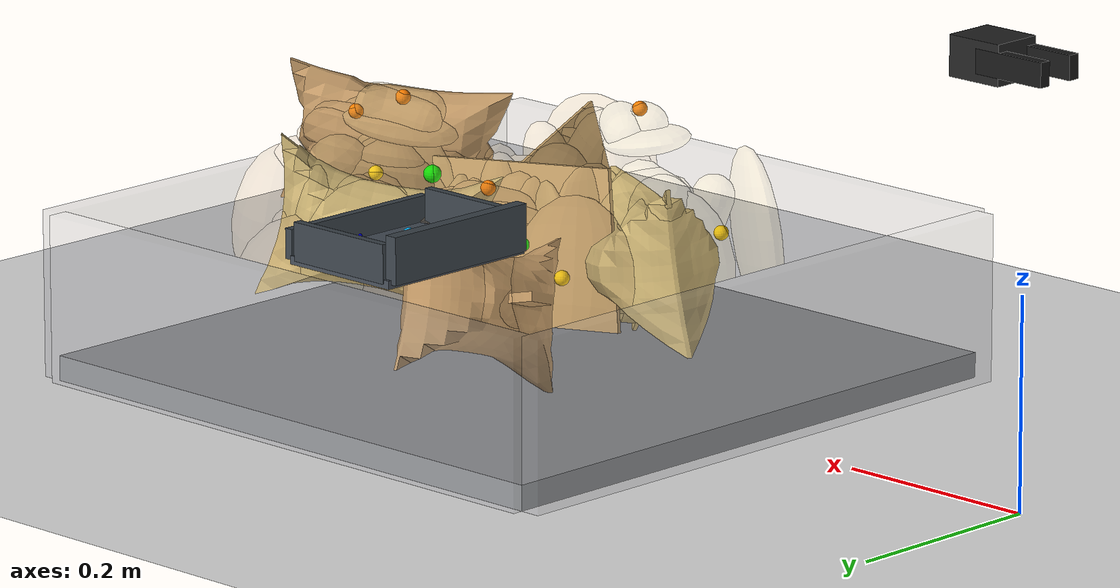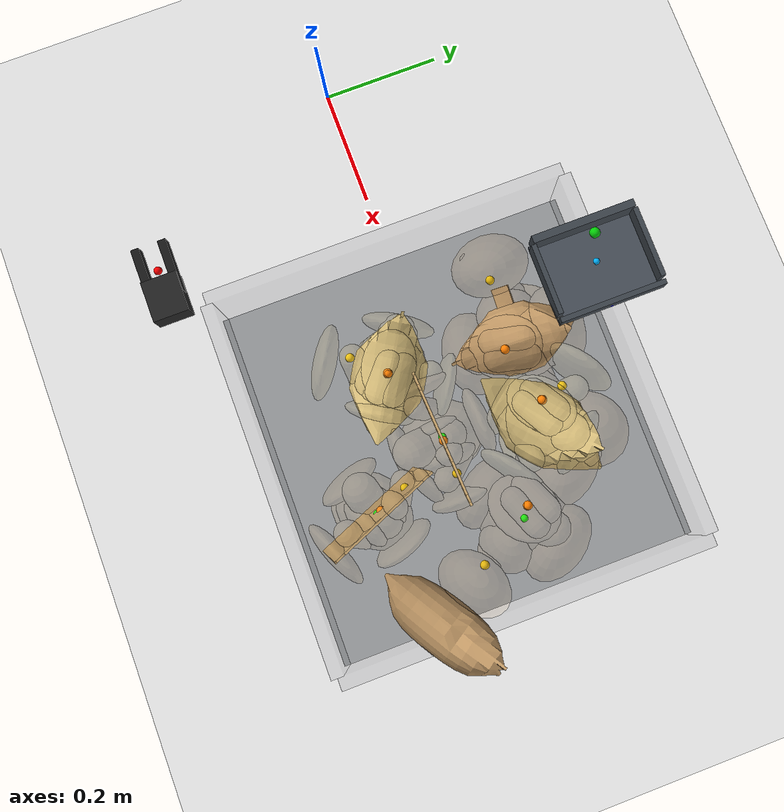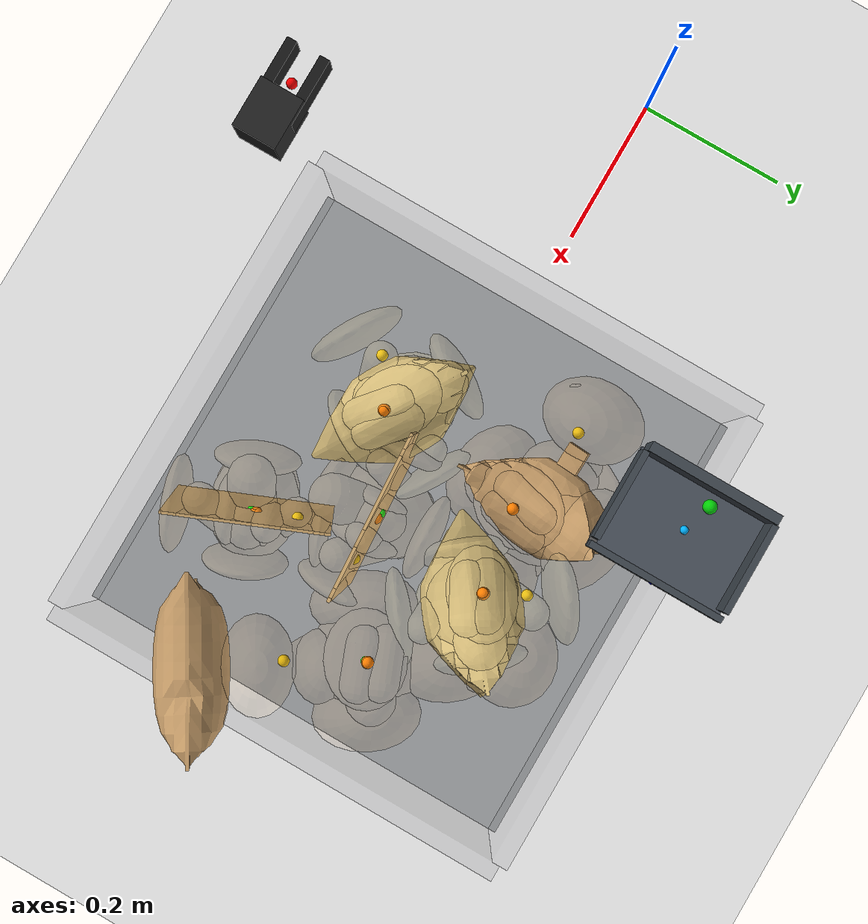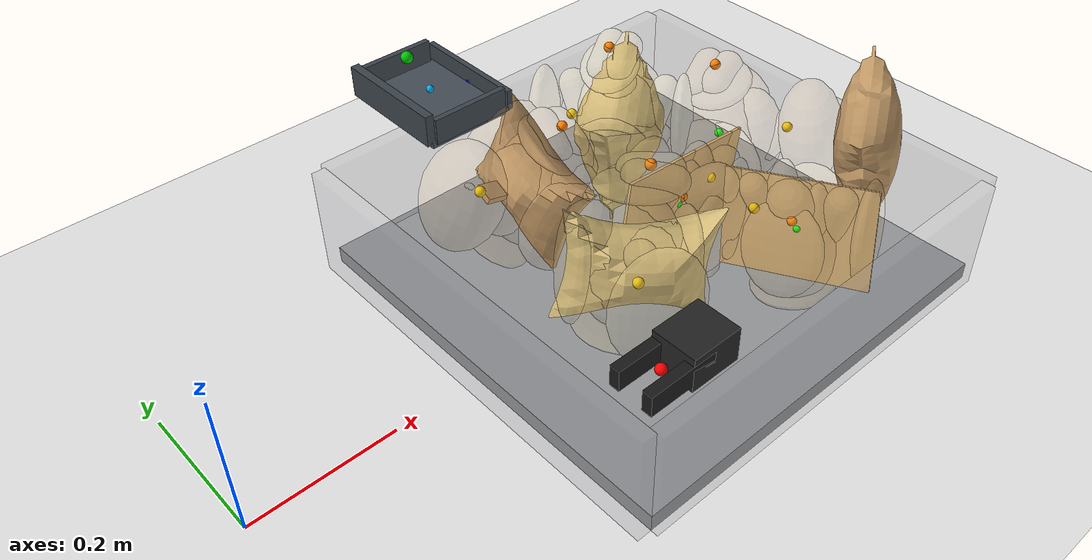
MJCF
<mujoco model="underfilled_slack_seed0">
  <compiler angle="radian" coordinate="local" inertiafromgeom="true" meshdir="D:/Michael/2025/01.Research/01.Parceldetection/16.Pybullet/bullet3-master (1)/bullet3-master/examples/pybullet/examples/DeformableTest/Sackcodex2/object"/>
  <option timestep="0.002" gravity="0 0 -9.81" integrator="implicitfast" iterations="100" tolerance="1e-8"/>
  <size memory="768M" nconmax="12000"/>

  <visual>
    <global azimuth="128" elevation="-20"/>
    <headlight ambient="0.34 0.34 0.34" diffuse="0.78 0.78 0.78" specular="0.15 0.15 0.15"/>
    <rgba haze="0.11 0.13 0.18 1"/>
  </visual>

  <default>
    <geom condim="4" friction="1.15 0.03 0.01" margin="0.003" solimp="0.93 0.98 0.003" solref="0.012 1"/>
    <joint damping="1.2" armature="0.002"/>
    <position kp="2500" forcelimited="true" forcerange="-420 420"/>
    <motor ctrllimited="true"/>
  </default>

  <asset>
    <mesh name="sack_0_visual_mesh" file="sack2.obj" scale="0.0745 0.0745 0.0768"/>
    <mesh name="sack_1_visual_mesh" file="sack8.obj" scale="0.0748 0.0748 0.0816"/>
    <mesh name="sack_2_visual_mesh" file="sack2.obj" scale="0.0675 0.0675 0.0682"/>
    <mesh name="sack_3_visual_mesh" file="sack3.obj" scale="0.0766 0.0766 0.0807"/>
    <mesh name="sack_4_visual_mesh" file="sack9.obj" scale="0.0708 0.0708 0.0755"/>
    <mesh name="sack_5_visual_mesh" file="sack7.obj" scale="0.0759 0.0759 0.0816"/>
  </asset>

  <worldbody>
    <light name="key" pos="0.85 0.15 1.8" dir="-0.2 -0.1 -1" directional="true"/>
    <geom name="floor" type="plane" size="2 2 0.1" rgba="0.93 0.93 0.93 1"/>
    <geom name="work_pad" type="box" pos="0.62 0 0.012" size="0.30 0.30 0.012" rgba="0.60 0.61 0.62 1" friction="1.4 0.05 0.01"/>
    <geom name="corral_front" type="box" pos="0.93 0.00 0.08" size="0.010 0.30 0.08" rgba="0.55 0.55 0.58 0.22" friction="1.0 0.03 0.01"/>
    <geom name="corral_back" type="box" pos="0.31 0.00 0.08" size="0.010 0.30 0.08" rgba="0.55 0.55 0.58 0.18" friction="1.0 0.03 0.01"/>
    <geom name="corral_left" type="box" pos="0.62 0.30 0.08" size="0.30 0.010 0.08" rgba="0.55 0.55 0.58 0.14" friction="1.0 0.03 0.01"/>
    <geom name="corral_right" type="box" pos="0.62 -0.30 0.08" size="0.30 0.010 0.08" rgba="0.55 0.55 0.58 0.14" friction="1.0 0.03 0.01"/>
    <camera name="overview" pos="1.22 0.00 0.92" xyaxes="0 1 0 -0.46 0 0.88"/>

    <body name="gripper_mocap" mocap="true" pos="0.36 -0.33 0.30" quat="0.707107 0 -0.707107 0"/>
    <body name="scoop_mocap" mocap="true" pos="0.42 0.28 0.20" quat="1 0 0 0"/>

    <body name="gripper_ctrl_base" pos="0.36 -0.33 0.30">
      <inertial pos="0 0 0" mass="0.001" diaginertia="1e-6 1e-6 1e-6"/>
      <joint name="gripper_ctrl_x" type="slide" axis="1 0 0" limited="true" range="0.20 1.00"/>
      <body name="gripper_ctrl_y_body">
        <inertial pos="0 0 0" mass="0.001" diaginertia="1e-6 1e-6 1e-6"/>
        <joint name="gripper_ctrl_y" type="slide" axis="0 1 0" limited="true" range="-0.60 0.60"/>
        <body name="gripper_ctrl_z_body">
          <inertial pos="0 0 0" mass="0.001" diaginertia="1e-6 1e-6 1e-6"/>
          <joint name="gripper_ctrl_z" type="slide" axis="0 0 1" limited="true" range="0.04 0.70"/>
          <body name="gripper_ctrl_yaw_body">
            <inertial pos="0 0 0" mass="0.001" diaginertia="1e-6 1e-6 1e-6"/>
            <joint name="gripper_ctrl_yaw" type="hinge" axis="0 0 1" limited="true" range="-3.1416 3.1416"/>
            <body name="gripper_ctrl_pitch_body">
              <inertial pos="0 0 0" mass="0.001" diaginertia="1e-6 1e-6 1e-6"/>
              <joint name="gripper_ctrl_pitch" type="hinge" axis="0 1 0" limited="true" range="-3.1416 3.1416"/>
              <body name="gripper_ctrl_roll_body">
                <inertial pos="0 0 0" mass="0.001" diaginertia="1e-6 1e-6 1e-6"/>
                <joint name="gripper_ctrl_roll" type="hinge" axis="1 0 0" limited="true" range="-3.1416 3.1416"/>
              </body>
            </body>
          </body>
        </body>
      </body>
    </body>

    <body name="scoop_ctrl_base" pos="0.42 0.28 0.20">
      <inertial pos="0 0 0" mass="0.001" diaginertia="1e-6 1e-6 1e-6"/>
      <joint name="scoop_ctrl_x" type="slide" axis="1 0 0" limited="true" range="0.20 1.00"/>
      <body name="scoop_ctrl_y_body">
        <inertial pos="0 0 0" mass="0.001" diaginertia="1e-6 1e-6 1e-6"/>
        <joint name="scoop_ctrl_y" type="slide" axis="0 1 0" limited="true" range="-0.60 0.60"/>
        <body name="scoop_ctrl_z_body">
          <inertial pos="0 0 0" mass="0.001" diaginertia="1e-6 1e-6 1e-6"/>
          <joint name="scoop_ctrl_z" type="slide" axis="0 0 1" limited="true" range="0.04 0.70"/>
          <body name="scoop_ctrl_yaw_body">
            <inertial pos="0 0 0" mass="0.001" diaginertia="1e-6 1e-6 1e-6"/>
            <joint name="scoop_ctrl_yaw" type="hinge" axis="0 0 1" limited="true" range="-3.1416 3.1416"/>
            <body name="scoop_ctrl_pitch_body">
              <inertial pos="0 0 0" mass="0.001" diaginertia="1e-6 1e-6 1e-6"/>
              <joint name="scoop_ctrl_pitch" type="hinge" axis="0 1 0" limited="true" range="-3.1416 3.1416"/>
              <body name="scoop_ctrl_roll_body">
                <inertial pos="0 0 0" mass="0.001" diaginertia="1e-6 1e-6 1e-6"/>
                <joint name="scoop_ctrl_roll" type="hinge" axis="1 0 0" limited="true" range="-3.1416 3.1416"/>
              </body>
            </body>
          </body>
        </body>
      </body>
    </body>

    <body name="gripper_tool" pos="0.36 -0.33 0.30" quat="0.707107 0 -0.707107 0">
      <freejoint name="gripper_tool_free"/>
      <inertial pos="0 0 0.04" mass="0.08" diaginertia="0.0002 0.0002 0.0002"/>
      <geom name="gripper_palm" type="box" pos="0 0 0.030" size="0.020 0.026 0.030" rgba="0.14 0.14 0.14 1"/>
      <body name="left_finger_body" pos="0 0 0.072">
        <joint name="left_finger_slide" type="slide" axis="0 1 0" limited="true" range="0.010 0.040" damping="12"/>
        <geom name="left_finger_geom" type="box" pos="0 0.020 0" size="0.012 0.006 0.040" rgba="0.10 0.10 0.10 1" friction="2.2 0.05 0.01"/>
      </body>
      <body name="right_finger_body" pos="0 0 0.072">
        <joint name="right_finger_slide" type="slide" axis="0 -1 0" limited="true" range="0.010 0.040" damping="12"/>
        <geom name="right_finger_geom" type="box" pos="0 -0.020 0" size="0.012 0.006 0.040" rgba="0.10 0.10 0.10 1" friction="2.2 0.05 0.01"/>
      </body>
      <site name="gripper_pinch_site" pos="0 0 0.074" size="0.006" rgba="1 0 0 1"/>
    </body>

    <body name="scoop_tool" pos="0.42 0.28 0.20" quat="1 0 0 0">
      <freejoint name="scoop_tool_free"/>
      <inertial pos="0 0 0.02" mass="0.10" diaginertia="0.0003 0.0003 0.0003"/>
      <geom name="scoop_plate" type="box" pos="0.062 0 0" size="0.062 0.085 0.004" rgba="0.28 0.31 0.35 1" friction="1.7 0.05 0.01"/>
      <geom name="scoop_lip" type="box" pos="0.126 0 0.014" size="0.004 0.085 0.014" rgba="0.24 0.27 0.30 1" friction="1.7 0.05 0.01"/>
      <geom name="scoop_left_rail" type="box" pos="0.062 0.082 0.018" size="0.056 0.004 0.018" rgba="0.24 0.27 0.30 1"/>
      <geom name="scoop_right_rail" type="box" pos="0.062 -0.082 0.018" size="0.056 0.004 0.018" rgba="0.24 0.27 0.30 1"/>
      <geom name="scoop_backstop" type="box" pos="0.000 0 0.022" size="0.006 0.082 0.022" rgba="0.24 0.27 0.30 1"/>
      <site name="scoop_tip_site" pos="0.126 0 0.005" size="0.005" rgba="0 0 1 1"/>
      <site name="scoop_center_site" pos="0.060 0 0.020" size="0.005" rgba="0 0.7 1 1"/>
      <site name="score_overlay_site" pos="0.030 0 0.080" size="0.008" rgba="0 1 0 0.8"/>
    </body>

    <body name="sack_0" pos="0.6381 -0.0275 0.1207" euler="0.0267 0.1131 -1.5148">
      <freejoint name="sack_0_free"/>

      <geom name="sack_0_visual" type="mesh" mesh="sack_0_visual_mesh" rgba="0.820 0.670 0.440 0.92" contype="0" conaffinity="0"/>
      <site name="sack_0_center_site" pos="0 0 0.000" size="0.006" rgba="0 1 0 1"/>
      <site name="sack_0_top_site" pos="0.0010 0.0061 0.0090" size="0.007" rgba="1 0.5 0 1"/>
      <site name="sack_0_side_site" pos="0.0025 0.0602 0.018" size="0.007" rgba="1 0.8 0 1"/>

      <geom name="sack_0_core_geom" type="ellipsoid" pos="0 0 0.0055" size="0.0452 0.0361 0.0634" mass="0.7222" rgba="0.820 0.670 0.440 0.12" friction="1.0 0.03 0.01"/>
      <geom name="sack_0_core_front" type="capsule" fromto="-0.0215 0 -0.0180 0.0525 0 0.0580" size="0.0287" mass="0.1720" rgba="0.820 0.670 0.440 0.10"/>
      <geom name="sack_0_core_left" type="capsule" fromto="-0.016 0.0361 -0.012 0.020 0.0593 0.054" size="0.0201" mass="0.3095" rgba="0.820 0.670 0.440 0.10"/>
      <geom name="sack_0_core_right" type="capsule" fromto="-0.016 -0.0361 -0.012 0.020 -0.0593 0.054" size="0.0181" mass="0.3095" rgba="0.820 0.670 0.440 0.10"/>

      <!-- 자루의 외형은 둥근 shell lobe로 보이게 하고, contact proxy는 반투명하게 숨긴다. -->
      <geom name="sack_0_shell_main_visual" type="ellipsoid" pos="0.0013 0.0002 -0.0277" size="0.0684 0.0563 0.0823" rgba="0.820 0.670 0.440 0.16" contype="0" conaffinity="0"/>
      <geom name="sack_0_shell_left_visual" type="ellipsoid" pos="0.0040 0.0298 0.0020" size="0.0465 0.0224 0.0675" rgba="0.820 0.670 0.440 0.14" contype="0" conaffinity="0"/>
      <geom name="sack_0_shell_right_visual" type="ellipsoid" pos="0.0040 -0.0176 0.0000" size="0.0438 0.0169 0.0658" rgba="0.820 0.670 0.440 0.12" contype="0" conaffinity="0"/>
      <geom name="sack_0_top_left_crown_visual" type="capsule" fromto="-0.0215 0.0132 -0.0303 0.0215 0.0066 -0.0263" size="0.0204" rgba="0.820 0.670 0.440 0.14" contype="0" conaffinity="0"/>
      <geom name="sack_0_top_right_crown_visual" type="capsule" fromto="-0.0215 -0.0066 -0.0263 0.0215 -0.0132 -0.0303" size="0.0204" rgba="0.820 0.670 0.440 0.14" contype="0" conaffinity="0"/>

      <body name="sack_0_bottom_support_proxy_body" pos="0.0005 0.0075 -0.0804">
        <joint name="sack_0_bottom_x" type="slide" axis="1 0 0" limited="true" range="-0.012 0.012" damping="18" stiffness="451.0"/>
        <joint name="sack_0_bottom_y" type="slide" axis="0 1 0" limited="true" range="-0.012 0.012" damping="18" stiffness="451.0"/>
        <joint name="sack_0_bottom_z" type="slide" axis="0 0 1" limited="true" range="-0.008 0.020" damping="24" stiffness="555.6"/>
        <geom name="sack_0_bottom_support_proxy" type="ellipsoid" size="0.0696 0.0567 0.0143" mass="0.1376" rgba="0.820 0.670 0.440 0.10" friction="1.55 0.05 0.01"/>
      </body>

      <body name="sack_0_top_grasp_proxy_body" pos="0.0025 0.0062 -0.0190">
        <joint name="sack_0_top_x" type="slide" axis="1 0 0" limited="true" range="-0.018 0.018" damping="12" stiffness="173.2"/>
        <joint name="sack_0_top_y" type="slide" axis="0 1 0" limited="true" range="-0.018 0.018" damping="12" stiffness="173.2"/>
        <joint name="sack_0_top_z" type="slide" axis="0 0 1" limited="true" range="-0.040 0.010" damping="14" stiffness="127.0"/>
        <geom name="sack_0_top_grasp_proxy" type="ellipsoid" size="0.0537 0.0367 0.0311" mass="0.1032" rgba="0.820 0.670 0.440 0.10" friction="2.2 0.05 0.01"/>
      </body>

      <body name="sack_0_left_side_proxy_body" pos="0.0004 0.0964 0.010">
        <joint name="sack_0_left_side_slide" type="slide" axis="0 -1 0" limited="true" range="-0.028 0.016" damping="16" stiffness="222.2"/>
        <geom name="sack_0_left_side_proxy" type="ellipsoid" size="0.0597 0.0172 0.0724" mass="0.1032" rgba="0.820 0.670 0.440 0.08" friction="1.25 0.04 0.01"/>
      </body>

      <body name="sack_0_right_side_proxy_body" pos="0.0004 -0.0843 0.010">
        <joint name="sack_0_right_side_slide" type="slide" axis="0 1 0" limited="true" range="-0.028 0.016" damping="16" stiffness="206.0"/>
        <geom name="sack_0_right_side_proxy" type="ellipsoid" size="0.0573 0.0135 0.0710" mass="0.1032" rgba="0.820 0.670 0.440 0.08" friction="1.25 0.04 0.01"/>
      </body>

      <body name="sack_0_front_proxy_body" pos="0.0662 0.0001 0.000">
        <joint name="sack_0_front_slide" type="slide" axis="-1 0 0" limited="true" range="-0.022 0.012" damping="15" stiffness="215.5"/>
        <geom name="sack_0_front_support_proxy" type="ellipsoid" size="0.0175 0.0547 0.0684" mass="0.0860" rgba="0.820 0.670 0.440 0.08" friction="1.20 0.04 0.01"/>
      </body>

      <body name="sack_0_back_proxy_body" pos="-0.0627 0.0001 0.000">
        <joint name="sack_0_back_slide" type="slide" axis="1 0 0" limited="true" range="-0.022 0.012" damping="15" stiffness="199.3"/>
        <geom name="sack_0_back_support_proxy" type="ellipsoid" size="0.0161 0.0547 0.0684" mass="0.0860" rgba="0.820 0.670 0.440 0.08" friction="1.20 0.04 0.01"/>
      </body>

      <body name="sack_0_shape_proxy_body" pos="0.0015 0.0258 0.0379">
        <joint name="sack_0_bulge_y" type="slide" axis="0 1 0" limited="true" range="-0.020 0.020" damping="8" stiffness="106.0"/>
        <joint name="sack_0_bulge_z" type="slide" axis="0 0 1" limited="true" range="-0.014 0.028" damping="8" stiffness="104.5"/>
        <geom name="sack_0_shape_proxy" type="ellipsoid" size="0.0241 0.0203 0.0471" mass="0.0688" rgba="0.820 0.670 0.440 0.10"/>
      </body>
    </body>

    <body name="sack_1" pos="0.5192 -0.0739 0.1180" euler="-0.0108 0.1719 2.5950">
      <freejoint name="sack_1_free"/>

      <geom name="sack_1_visual" type="mesh" mesh="sack_1_visual_mesh" rgba="0.840 0.740 0.480 0.92" contype="0" conaffinity="0"/>
      <site name="sack_1_center_site" pos="0 0 0.000" size="0.006" rgba="0 1 0 1"/>
      <site name="sack_1_top_site" pos="0.0071 0.0059 0.1427" size="0.007" rgba="1 0.5 0 1"/>
      <site name="sack_1_side_site" pos="0.0179 0.0645 0.018" size="0.007" rgba="1 0.8 0 1"/>

      <geom name="sack_1_core_geom" type="ellipsoid" pos="0 0 0.0060" size="0.0517 0.0438 0.0895" mass="1.1638" rgba="0.840 0.740 0.480 0.12" friction="1.0 0.03 0.01"/>
      <geom name="sack_1_core_front" type="capsule" fromto="-0.0061 0 -0.0180 0.0679 0 0.0580" size="0.0307" mass="0.2771" rgba="0.840 0.740 0.480 0.10"/>
      <geom name="sack_1_core_left" type="capsule" fromto="-0.016 0.0369 -0.012 0.020 0.0612 0.054" size="0.0201" mass="0.4988" rgba="0.840 0.740 0.480 0.10"/>
      <geom name="sack_1_core_right" type="capsule" fromto="-0.016 -0.0369 -0.012 0.020 -0.0612 0.054" size="0.0181" mass="0.4988" rgba="0.840 0.740 0.480 0.10"/>

      <!-- 자루의 외형은 둥근 shell lobe로 보이게 하고, contact proxy는 반투명하게 숨긴다. -->
      <geom name="sack_1_shell_main_visual" type="ellipsoid" pos="0.0089 -0.0001 0.0003" size="0.0687 0.0587 0.0901" rgba="0.840 0.740 0.480 0.16" contype="0" conaffinity="0"/>
      <geom name="sack_1_shell_left_visual" type="ellipsoid" pos="0.0040 0.0311 0.0020" size="0.0467 0.0237 0.0739" rgba="0.840 0.740 0.480 0.14" contype="0" conaffinity="0"/>
      <geom name="sack_1_shell_right_visual" type="ellipsoid" pos="0.0040 -0.0191 0.0000" size="0.0440 0.0175 0.0721" rgba="0.840 0.740 0.480 0.12" contype="0" conaffinity="0"/>
      <geom name="sack_1_top_left_crown_visual" type="capsule" fromto="-0.0219 0.0145 0.1254 0.0219 0.0073 0.1294" size="0.0196" rgba="0.840 0.740 0.480 0.14" contype="0" conaffinity="0"/>
      <geom name="sack_1_top_right_crown_visual" type="capsule" fromto="-0.0219 -0.0073 0.1294 0.0219 -0.0145 0.1254" size="0.0196" rgba="0.840 0.740 0.480 0.14" contype="0" conaffinity="0"/>

      <body name="sack_1_bottom_support_proxy_body" pos="0.0032 0.0035 -0.0904">
        <joint name="sack_1_bottom_x" type="slide" axis="1 0 0" limited="true" range="-0.012 0.012" damping="18" stiffness="510.3"/>
        <joint name="sack_1_bottom_y" type="slide" axis="0 1 0" limited="true" range="-0.012 0.012" damping="18" stiffness="510.3"/>
        <joint name="sack_1_bottom_z" type="slide" axis="0 0 1" limited="true" range="-0.008 0.020" damping="24" stiffness="628.2"/>
        <geom name="sack_1_bottom_support_proxy" type="ellipsoid" size="0.0705 0.0603 0.0123" mass="0.2217" rgba="0.840 0.740 0.480 0.10" friction="1.55 0.05 0.01"/>
      </body>

      <body name="sack_1_top_grasp_proxy_body" pos="0.0179 0.0059 0.1147">
        <joint name="sack_1_top_x" type="slide" axis="1 0 0" limited="true" range="-0.018 0.018" damping="12" stiffness="196.2"/>
        <joint name="sack_1_top_y" type="slide" axis="0 1 0" limited="true" range="-0.018 0.018" damping="12" stiffness="196.2"/>
        <joint name="sack_1_top_z" type="slide" axis="0 0 1" limited="true" range="-0.040 0.010" damping="14" stiffness="146.8"/>
        <geom name="sack_1_top_grasp_proxy" type="ellipsoid" size="0.0546 0.0403 0.0131" mass="0.1663" rgba="0.840 0.740 0.480 0.10" friction="2.2 0.05 0.01"/>
      </body>

      <body name="sack_1_left_side_proxy_body" pos="0.0029 0.1014 0.010">
        <joint name="sack_1_left_side_slide" type="slide" axis="0 -1 0" limited="true" range="-0.028 0.016" damping="16" stiffness="263.4"/>
        <geom name="sack_1_left_side_proxy" type="ellipsoid" size="0.0606 0.0183 0.0824" mass="0.1663" rgba="0.840 0.740 0.480 0.08" friction="1.25 0.04 0.01"/>
      </body>

      <body name="sack_1_right_side_proxy_body" pos="0.0029 -0.0894 0.010">
        <joint name="sack_1_right_side_slide" type="slide" axis="0 1 0" limited="true" range="-0.028 0.016" damping="16" stiffness="243.9"/>
        <geom name="sack_1_right_side_proxy" type="ellipsoid" size="0.0582 0.0143 0.0808" mass="0.1663" rgba="0.840 0.740 0.480 0.08" friction="1.25 0.04 0.01"/>
      </body>

      <body name="sack_1_front_proxy_body" pos="0.0825 -0.0000 0.000">
        <joint name="sack_1_front_slide" type="slide" axis="-1 0 0" limited="true" range="-0.022 0.012" damping="15" stiffness="245.2"/>
        <geom name="sack_1_front_support_proxy" type="ellipsoid" size="0.0182 0.0583 0.0784" mass="0.1386" rgba="0.840 0.740 0.480 0.08" friction="1.20 0.04 0.01"/>
      </body>

      <body name="sack_1_back_proxy_body" pos="-0.0575 -0.0000 0.000">
        <joint name="sack_1_back_slide" type="slide" axis="1 0 0" limited="true" range="-0.022 0.012" damping="15" stiffness="225.7"/>
        <geom name="sack_1_back_support_proxy" type="ellipsoid" size="0.0168 0.0583 0.0784" mass="0.1386" rgba="0.840 0.740 0.480 0.08" friction="1.20 0.04 0.01"/>
      </body>

      <body name="sack_1_shape_proxy_body" pos="0.0107 0.0280 0.0208">
        <joint name="sack_1_bulge_y" type="slide" axis="0 1 0" limited="true" range="-0.020 0.020" damping="8" stiffness="66.5"/>
        <joint name="sack_1_bulge_z" type="slide" axis="0 0 1" limited="true" range="-0.014 0.028" damping="8" stiffness="74.8"/>
        <geom name="sack_1_shape_proxy" type="ellipsoid" size="0.0242 0.0203 0.0291" mass="0.1108" rgba="0.840 0.740 0.480 0.10"/>
      </body>
    </body>

    <body name="sack_2" pos="0.7143 -0.1638 0.1197" euler="-0.1809 0.1691 -2.7459">
      <freejoint name="sack_2_free"/>

      <geom name="sack_2_visual" type="mesh" mesh="sack_2_visual_mesh" rgba="0.820 0.670 0.440 0.92" contype="0" conaffinity="0"/>
      <site name="sack_2_center_site" pos="0 0 0.000" size="0.006" rgba="0 1 0 1"/>
      <site name="sack_2_top_site" pos="0.0015 -0.0069 0.0094" size="0.007" rgba="1 0.5 0 1"/>
      <site name="sack_2_side_site" pos="0.0038 -0.0568 0.018" size="0.007" rgba="1 0.8 0 1"/>

      <geom name="sack_2_core_geom" type="ellipsoid" pos="0 0 0.0055" size="0.0446 0.0353 0.0623" mass="0.7269" rgba="0.820 0.670 0.440 0.12" friction="1.0 0.03 0.01"/>
      <geom name="sack_2_core_front" type="capsule" fromto="-0.0202 0 -0.0180 0.0538 0 0.0580" size="0.0280" mass="0.1731" rgba="0.820 0.670 0.440 0.10"/>
      <geom name="sack_2_core_left" type="capsule" fromto="-0.016 0.0347 -0.012 0.020 0.0563 0.054" size="0.0201" mass="0.3115" rgba="0.820 0.670 0.440 0.10"/>
      <geom name="sack_2_core_right" type="capsule" fromto="-0.016 -0.0347 -0.012 0.020 -0.0563 0.054" size="0.0181" mass="0.3115" rgba="0.820 0.670 0.440 0.10"/>

      <!-- 자루의 외형은 둥근 shell lobe로 보이게 하고, contact proxy는 반투명하게 숨긴다. -->
      <geom name="sack_2_shell_main_visual" type="ellipsoid" pos="0.0019 -0.0015 -0.0272" size="0.0678 0.0545 0.0803" rgba="0.820 0.670 0.440 0.16" contype="0" conaffinity="0"/>
      <geom name="sack_2_shell_left_visual" type="ellipsoid" pos="0.0040 0.0232 0.0020" size="0.0461 0.0203 0.0658" rgba="0.820 0.670 0.440 0.14" contype="0" conaffinity="0"/>
      <geom name="sack_2_shell_right_visual" type="ellipsoid" pos="0.0040 -0.0198 0.0000" size="0.0434 0.0160 0.0642" rgba="0.820 0.670 0.440 0.12" contype="0" conaffinity="0"/>
      <geom name="sack_2_top_left_crown_visual" type="capsule" fromto="-0.0212 0.0124 -0.0295 0.0212 0.0062 -0.0255" size="0.0204" rgba="0.820 0.670 0.440 0.14" contype="0" conaffinity="0"/>
      <geom name="sack_2_top_right_crown_visual" type="capsule" fromto="-0.0212 -0.0062 -0.0255 0.0212 -0.0124 -0.0295" size="0.0204" rgba="0.820 0.670 0.440 0.14" contype="0" conaffinity="0"/>

      <body name="sack_2_bottom_support_proxy_body" pos="0.0007 0.0008 -0.0781">
        <joint name="sack_2_bottom_x" type="slide" axis="1 0 0" limited="true" range="-0.012 0.012" damping="18" stiffness="430.6"/>
        <joint name="sack_2_bottom_y" type="slide" axis="0 1 0" limited="true" range="-0.012 0.012" damping="18" stiffness="430.6"/>
        <joint name="sack_2_bottom_z" type="slide" axis="0 0 1" limited="true" range="-0.008 0.020" damping="24" stiffness="530.7"/>
        <geom name="sack_2_bottom_support_proxy" type="ellipsoid" size="0.0690 0.0545 0.0150" mass="0.1385" rgba="0.820 0.670 0.440 0.10" friction="1.55 0.05 0.01"/>
      </body>

      <body name="sack_2_top_grasp_proxy_body" pos="0.0038 -0.0071 -0.0186">
        <joint name="sack_2_top_x" type="slide" axis="1 0 0" limited="true" range="-0.018 0.018" damping="12" stiffness="165.2"/>
        <joint name="sack_2_top_y" type="slide" axis="0 1 0" limited="true" range="-0.018 0.018" damping="12" stiffness="165.2"/>
        <joint name="sack_2_top_z" type="slide" axis="0 0 1" limited="true" range="-0.040 0.010" damping="14" stiffness="120.2"/>
        <geom name="sack_2_top_grasp_proxy" type="ellipsoid" size="0.0530 0.0345 0.0307" mass="0.1038" rgba="0.820 0.670 0.440 0.10" friction="2.2 0.05 0.01"/>
      </body>

      <body name="sack_2_left_side_proxy_body" pos="0.0006 0.0877 0.010">
        <joint name="sack_2_left_side_slide" type="slide" axis="0 -1 0" limited="true" range="-0.028 0.016" damping="16" stiffness="208.6"/>
        <geom name="sack_2_left_side_proxy" type="ellipsoid" size="0.0590 0.0155 0.0701" mass="0.1038" rgba="0.820 0.670 0.440 0.08" friction="1.25 0.04 0.01"/>
      </body>

      <body name="sack_2_right_side_proxy_body" pos="0.0006 -0.0843 0.010">
        <joint name="sack_2_right_side_slide" type="slide" axis="0 1 0" limited="true" range="-0.028 0.016" damping="16" stiffness="193.6"/>
        <geom name="sack_2_right_side_proxy" type="ellipsoid" size="0.0567 0.0121 0.0687" mass="0.1038" rgba="0.820 0.670 0.440 0.08" friction="1.25 0.04 0.01"/>
      </body>

      <body name="sack_2_front_proxy_body" pos="0.0668 -0.0005 0.000">
        <joint name="sack_2_front_slide" type="slide" axis="-1 0 0" limited="true" range="-0.022 0.012" damping="15" stiffness="205.3"/>
        <geom name="sack_2_front_support_proxy" type="ellipsoid" size="0.0164 0.0525 0.0661" mass="0.0865" rgba="0.820 0.670 0.440 0.08" friction="1.20 0.04 0.01"/>
      </body>

      <body name="sack_2_back_proxy_body" pos="-0.0615 -0.0005 0.000">
        <joint name="sack_2_back_slide" type="slide" axis="1 0 0" limited="true" range="-0.022 0.012" damping="15" stiffness="190.3"/>
        <geom name="sack_2_back_support_proxy" type="ellipsoid" size="0.0150 0.0525 0.0661" mass="0.0865" rgba="0.820 0.670 0.440 0.08" friction="1.20 0.04 0.01"/>
      </body>

      <body name="sack_2_shape_proxy_body" pos="0.0023 -0.0231 0.0438">
        <joint name="sack_2_bulge_y" type="slide" axis="0 1 0" limited="true" range="-0.020 0.020" damping="8" stiffness="119.6"/>
        <joint name="sack_2_bulge_z" type="slide" axis="0 0 1" limited="true" range="-0.014 0.028" damping="8" stiffness="114.7"/>
        <geom name="sack_2_shape_proxy" type="ellipsoid" size="0.0241 0.0202 0.0467" mass="0.0692" rgba="0.820 0.670 0.440 0.10"/>
      </body>
    </body>

    <body name="sack_3" pos="0.8007 0.0467 0.1179" euler="-0.0724 -0.1682 0.5505">
      <freejoint name="sack_3_free"/>

      <geom name="sack_3_visual" type="mesh" mesh="sack_3_visual_mesh" rgba="0.760 0.600 0.400 0.92" contype="0" conaffinity="0"/>
      <site name="sack_3_center_site" pos="0 0 0.000" size="0.006" rgba="0 1 0 1"/>
      <site name="sack_3_top_site" pos="-0.0020 -0.0066 0.1194" size="0.007" rgba="1 0.5 0 1"/>
      <site name="sack_3_side_site" pos="-0.0050 -0.0975 0.018" size="0.007" rgba="1 0.8 0 1"/>

      <geom name="sack_3_core_geom" type="ellipsoid" pos="0 0 0.0059" size="0.0438 0.0350 0.0758" mass="1.0275" rgba="0.760 0.600 0.400 0.12" friction="1.0 0.03 0.01"/>
      <geom name="sack_3_core_front" type="capsule" fromto="-0.0290 0 -0.0180 0.0450 0 0.0580" size="0.0295" mass="0.2446" rgba="0.760 0.600 0.400 0.10"/>
      <geom name="sack_3_core_left" type="capsule" fromto="-0.016 0.0668 -0.012 0.020 0.1295 0.054" size="0.0210" mass="0.4403" rgba="0.760 0.600 0.400 0.10"/>
      <geom name="sack_3_core_right" type="capsule" fromto="-0.016 -0.0668 -0.012 0.020 -0.1295 0.054" size="0.0188" mass="0.4403" rgba="0.760 0.600 0.400 0.10"/>

      <!-- 자루의 외형은 둥근 shell lobe로 보이게 하고, contact proxy는 반투명하게 숨긴다. -->
      <geom name="sack_3_shell_main_visual" type="ellipsoid" pos="-0.0025 -0.0009 -0.0032" size="0.0721 0.0660 0.0870" rgba="0.760 0.600 0.400 0.16" contype="0" conaffinity="0"/>
      <geom name="sack_3_shell_left_visual" type="ellipsoid" pos="0.0040 0.0976 0.0020" size="0.0491 0.0706 0.0713" rgba="0.760 0.600 0.400 0.14" contype="0" conaffinity="0"/>
      <geom name="sack_3_shell_right_visual" type="ellipsoid" pos="0.0040 -0.0506 0.0000" size="0.0462 0.0388 0.0696" rgba="0.760 0.600 0.400 0.12" contype="0" conaffinity="0"/>
      <geom name="sack_3_top_left_crown_visual" type="capsule" fromto="-0.0230 0.0172 0.0994 0.0230 0.0086 0.1034" size="0.0207" rgba="0.760 0.600 0.400 0.14" contype="0" conaffinity="0"/>
      <geom name="sack_3_top_right_crown_visual" type="capsule" fromto="-0.0230 -0.0086 0.1034 0.0230 -0.0172 0.0994" size="0.0207" rgba="0.760 0.600 0.400 0.14" contype="0" conaffinity="0"/>

      <body name="sack_3_bottom_support_proxy_body" pos="-0.0009 0.0123 -0.0856">
        <joint name="sack_3_bottom_x" type="slide" axis="1 0 0" limited="true" range="-0.012 0.012" damping="18" stiffness="473.9"/>
        <joint name="sack_3_bottom_y" type="slide" axis="0 1 0" limited="true" range="-0.012 0.012" damping="18" stiffness="473.9"/>
        <joint name="sack_3_bottom_z" type="slide" axis="0 0 1" limited="true" range="-0.008 0.020" damping="24" stiffness="583.7"/>
        <geom name="sack_3_bottom_support_proxy" type="ellipsoid" size="0.0732 0.0677 0.0135" mass="0.1957" rgba="0.760 0.600 0.400 0.10" friction="1.55 0.05 0.01"/>
      </body>

      <body name="sack_3_top_grasp_proxy_body" pos="-0.0050 -0.0066 0.0914">
        <joint name="sack_3_top_x" type="slide" axis="1 0 0" limited="true" range="-0.018 0.018" damping="12" stiffness="182.1"/>
        <joint name="sack_3_top_y" type="slide" axis="0 1 0" limited="true" range="-0.018 0.018" damping="12" stiffness="182.1"/>
        <joint name="sack_3_top_z" type="slide" axis="0 0 1" limited="true" range="-0.040 0.010" damping="14" stiffness="134.6"/>
        <geom name="sack_3_top_grasp_proxy" type="ellipsoid" size="0.0575 0.0477 0.0153" mass="0.1468" rgba="0.760 0.600 0.400 0.10" friction="2.2 0.05 0.01"/>
      </body>

      <body name="sack_3_left_side_proxy_body" pos="-0.0008 0.1753 0.010">
        <joint name="sack_3_left_side_slide" type="slide" axis="0 -1 0" limited="true" range="-0.028 0.016" damping="16" stiffness="238.8"/>
        <geom name="sack_3_left_side_proxy" type="ellipsoid" size="0.0635 0.0567 0.0776" mass="0.1468" rgba="0.760 0.600 0.400 0.08" friction="1.25 0.04 0.01"/>
      </body>

      <body name="sack_3_right_side_proxy_body" pos="-0.0008 -0.1283 0.010">
        <joint name="sack_3_right_side_slide" type="slide" axis="0 1 0" limited="true" range="-0.028 0.016" damping="16" stiffness="221.4"/>
        <geom name="sack_3_right_side_proxy" type="ellipsoid" size="0.0610 0.0442 0.0761" mass="0.1468" rgba="0.760 0.600 0.400 0.08" friction="1.25 0.04 0.01"/>
      </body>

      <body name="sack_3_front_proxy_body" pos="0.0625 -0.0003 0.000">
        <joint name="sack_3_front_slide" type="slide" axis="-1 0 0" limited="true" range="-0.022 0.012" damping="15" stiffness="226.9"/>
        <geom name="sack_3_front_support_proxy" type="ellipsoid" size="0.0438 0.0657 0.0736" mass="0.1223" rgba="0.760 0.600 0.400 0.08" friction="1.20 0.04 0.01"/>
      </body>

      <body name="sack_3_back_proxy_body" pos="-0.0695 -0.0003 0.000">
        <joint name="sack_3_back_slide" type="slide" axis="1 0 0" limited="true" range="-0.022 0.012" damping="15" stiffness="209.5"/>
        <geom name="sack_3_back_support_proxy" type="ellipsoid" size="0.0403 0.0657 0.0736" mass="0.1223" rgba="0.760 0.600 0.400 0.08" friction="1.20 0.04 0.01"/>
      </body>

      <body name="sack_3_shape_proxy_body" pos="-0.0030 -0.1141 0.0313">
        <joint name="sack_3_bulge_y" type="slide" axis="0 1 0" limited="true" range="-0.020 0.020" damping="8" stiffness="90.7"/>
        <joint name="sack_3_bulge_z" type="slide" axis="0 0 1" limited="true" range="-0.014 0.028" damping="8" stiffness="93.1"/>
        <geom name="sack_3_shape_proxy" type="ellipsoid" size="0.0252 0.0224 0.0313" mass="0.0979" rgba="0.760 0.600 0.400 0.10"/>
      </body>
    </body>

    <body name="sack_4" pos="0.5345 0.1388 0.1164" euler="0.3251 0.2369 -1.6619">
      <freejoint name="sack_4_free"/>

      <geom name="sack_4_visual" type="mesh" mesh="sack_4_visual_mesh" rgba="0.760 0.600 0.400 0.92" contype="0" conaffinity="0"/>
      <site name="sack_4_center_site" pos="0 0 0.000" size="0.006" rgba="0 1 0 1"/>
      <site name="sack_4_top_site" pos="0.0028 -0.0035 0.1062" size="0.007" rgba="1 0.5 0 1"/>
      <site name="sack_4_side_site" pos="0.0070 -0.1031 0.018" size="0.007" rgba="1 0.8 0 1"/>

      <geom name="sack_4_core_geom" type="ellipsoid" pos="0 0 0.0058" size="0.0441 0.0355 0.0766" mass="0.9286" rgba="0.760 0.600 0.400 0.12" friction="1.0 0.03 0.01"/>
      <geom name="sack_4_core_front" type="capsule" fromto="-0.0170 0 -0.0180 0.0570 0 0.0580" size="0.0299" mass="0.2211" rgba="0.760 0.600 0.400 0.10"/>
      <geom name="sack_4_core_left" type="capsule" fromto="-0.016 0.0713 -0.012 0.020 0.1398 0.054" size="0.0211" mass="0.3980" rgba="0.760 0.600 0.400 0.10"/>
      <geom name="sack_4_core_right" type="capsule" fromto="-0.016 -0.0713 -0.012 0.020 -0.1398 0.054" size="0.0189" mass="0.3980" rgba="0.760 0.600 0.400 0.10"/>

      <!-- 자루의 외형은 둥근 shell lobe로 보이게 하고, contact proxy는 반투명하게 숨긴다. -->
      <geom name="sack_4_shell_main_visual" type="ellipsoid" pos="0.0035 0.0041 -0.0050" size="0.0726 0.0675 0.0916" rgba="0.760 0.600 0.400 0.16" contype="0" conaffinity="0"/>
      <geom name="sack_4_shell_left_visual" type="ellipsoid" pos="0.0040 0.1180 0.0020" size="0.0493 0.0777 0.0751" rgba="0.760 0.600 0.400 0.14" contype="0" conaffinity="0"/>
      <geom name="sack_4_shell_right_visual" type="ellipsoid" pos="0.0040 -0.0450 0.0000" size="0.0464 0.0420 0.0733" rgba="0.760 0.600 0.400 0.12" contype="0" conaffinity="0"/>
      <geom name="sack_4_top_left_crown_visual" type="capsule" fromto="-0.0232 0.0178 0.0848 0.0232 0.0089 0.0888" size="0.0207" rgba="0.760 0.600 0.400 0.14" contype="0" conaffinity="0"/>
      <geom name="sack_4_top_right_crown_visual" type="capsule" fromto="-0.0232 -0.0089 0.0888 0.0232 -0.0178 0.0848" size="0.0207" rgba="0.760 0.600 0.400 0.14" contype="0" conaffinity="0"/>

      <body name="sack_4_bottom_support_proxy_body" pos="0.0013 -0.0081 -0.0910">
        <joint name="sack_4_bottom_x" type="slide" axis="1 0 0" limited="true" range="-0.012 0.012" damping="18" stiffness="487.0"/>
        <joint name="sack_4_bottom_y" type="slide" axis="0 1 0" limited="true" range="-0.012 0.012" damping="18" stiffness="487.0"/>
        <joint name="sack_4_bottom_z" type="slide" axis="0 0 1" limited="true" range="-0.008 0.020" damping="24" stiffness="599.7"/>
        <geom name="sack_4_bottom_support_proxy" type="ellipsoid" size="0.0736 0.0694 0.0131" mass="0.1769" rgba="0.760 0.600 0.400 0.10" friction="1.55 0.05 0.01"/>
      </body>

      <body name="sack_4_top_grasp_proxy_body" pos="0.0070 -0.0031 0.0782">
        <joint name="sack_4_top_x" type="slide" axis="1 0 0" limited="true" range="-0.018 0.018" damping="12" stiffness="187.2"/>
        <joint name="sack_4_top_y" type="slide" axis="0 1 0" limited="true" range="-0.018 0.018" damping="12" stiffness="187.2"/>
        <joint name="sack_4_top_z" type="slide" axis="0 0 1" limited="true" range="-0.040 0.010" damping="14" stiffness="139.0"/>
        <geom name="sack_4_top_grasp_proxy" type="ellipsoid" size="0.0580 0.0494 0.0165" mass="0.1327" rgba="0.760 0.600 0.400 0.10" friction="2.2 0.05 0.01"/>
      </body>

      <body name="sack_4_left_side_proxy_body" pos="0.0011 0.1975 0.010">
        <joint name="sack_4_left_side_slide" type="slide" axis="0 -1 0" limited="true" range="-0.028 0.016" damping="16" stiffness="247.4"/>
        <geom name="sack_4_left_side_proxy" type="ellipsoid" size="0.0640 0.0625 0.0830" mass="0.1327" rgba="0.760 0.600 0.400 0.08" friction="1.25 0.04 0.01"/>
      </body>

      <body name="sack_4_right_side_proxy_body" pos="0.0011 -0.1244 0.010">
        <joint name="sack_4_right_side_slide" type="slide" axis="0 1 0" limited="true" range="-0.028 0.016" damping="16" stiffness="229.2"/>
        <geom name="sack_4_right_side_proxy" type="ellipsoid" size="0.0614 0.0487 0.0814" mass="0.1327" rgba="0.760 0.600 0.400 0.08" friction="1.25 0.04 0.01"/>
      </body>

      <body name="sack_4_front_proxy_body" pos="0.0750 0.0013 0.000">
        <joint name="sack_4_front_slide" type="slide" axis="-1 0 0" limited="true" range="-0.022 0.012" damping="15" stiffness="233.5"/>
        <geom name="sack_4_front_support_proxy" type="ellipsoid" size="0.0477 0.0674 0.0790" mass="0.1105" rgba="0.760 0.600 0.400 0.08" friction="1.20 0.04 0.01"/>
      </body>

      <body name="sack_4_back_proxy_body" pos="-0.0652 0.0013 0.000">
        <joint name="sack_4_back_slide" type="slide" axis="1 0 0" limited="true" range="-0.022 0.012" damping="15" stiffness="215.3"/>
        <geom name="sack_4_back_support_proxy" type="ellipsoid" size="0.0438 0.0674 0.0790" mass="0.1105" rgba="0.760 0.600 0.400 0.08" friction="1.20 0.04 0.01"/>
      </body>

      <body name="sack_4_shape_proxy_body" pos="0.0042 -0.1229 0.0275">
        <joint name="sack_4_bulge_y" type="slide" axis="0 1 0" limited="true" range="-0.020 0.020" damping="8" stiffness="82.0"/>
        <joint name="sack_4_bulge_z" type="slide" axis="0 0 1" limited="true" range="-0.014 0.028" damping="8" stiffness="86.5"/>
        <geom name="sack_4_shape_proxy" type="ellipsoid" size="0.0253 0.0227 0.0325" mass="0.0884" rgba="0.760 0.600 0.400 0.10"/>
      </body>
    </body>

    <body name="sack_5" pos="0.6775 0.1234 0.1504" euler="0.0760 -0.1582 0.6681">
      <freejoint name="sack_5_free"/>

      <geom name="sack_5_visual" type="mesh" mesh="sack_5_visual_mesh" rgba="0.840 0.740 0.480 0.92" contype="0" conaffinity="0"/>
      <site name="sack_5_center_site" pos="0 0 0.000" size="0.006" rgba="0 1 0 1"/>
      <site name="sack_5_top_site" pos="-0.0014 0.0064 0.1374" size="0.007" rgba="1 0.5 0 1"/>
      <site name="sack_5_side_site" pos="-0.0035 0.0636 0.018" size="0.007" rgba="1 0.8 0 1"/>

      <geom name="sack_5_core_geom" type="ellipsoid" pos="0 0 0.0060" size="0.0513 0.0432 0.0884" mass="0.9717" rgba="0.840 0.740 0.480 0.12" friction="1.0 0.03 0.01"/>
      <geom name="sack_5_core_front" type="capsule" fromto="-0.0275 0 -0.0180 0.0465 0 0.0580" size="0.0302" mass="0.2314" rgba="0.840 0.740 0.480 0.10"/>
      <geom name="sack_5_core_left" type="capsule" fromto="-0.016 0.0375 -0.012 0.020 0.0626 0.054" size="0.0202" mass="0.4165" rgba="0.840 0.740 0.480 0.10"/>
      <geom name="sack_5_core_right" type="capsule" fromto="-0.016 -0.0375 -0.012 0.020 -0.0626 0.054" size="0.0181" mass="0.4165" rgba="0.840 0.740 0.480 0.10"/>

      <!-- 자루의 외형은 둥근 shell lobe로 보이게 하고, contact proxy는 반투명하게 숨긴다. -->
      <geom name="sack_5_shell_main_visual" type="ellipsoid" pos="-0.0018 0.0006 0.0011" size="0.0683 0.0575 0.0847" rgba="0.840 0.740 0.480 0.16" contype="0" conaffinity="0"/>
      <geom name="sack_5_shell_left_visual" type="ellipsoid" pos="0.0040 0.0338 0.0020" size="0.0464 0.0246 0.0694" rgba="0.840 0.740 0.480 0.14" contype="0" conaffinity="0"/>
      <geom name="sack_5_shell_right_visual" type="ellipsoid" pos="0.0040 -0.0182 0.0000" size="0.0437 0.0179 0.0678" rgba="0.840 0.740 0.480 0.12" contype="0" conaffinity="0"/>
      <geom name="sack_5_top_left_crown_visual" type="capsule" fromto="-0.0217 0.0140 0.1207 0.0217 0.0070 0.1247" size="0.0196" rgba="0.840 0.740 0.480 0.14" contype="0" conaffinity="0"/>
      <geom name="sack_5_top_right_crown_visual" type="capsule" fromto="-0.0217 -0.0070 0.1247 0.0217 -0.0140 0.1207" size="0.0196" rgba="0.840 0.740 0.480 0.14" contype="0" conaffinity="0"/>

      <body name="sack_5_bottom_support_proxy_body" pos="-0.0006 -0.0125 -0.0840">
        <joint name="sack_5_bottom_x" type="slide" axis="1 0 0" limited="true" range="-0.012 0.012" damping="18" stiffness="495.3"/>
        <joint name="sack_5_bottom_y" type="slide" axis="0 1 0" limited="true" range="-0.012 0.012" damping="18" stiffness="495.3"/>
        <joint name="sack_5_bottom_z" type="slide" axis="0 0 1" limited="true" range="-0.008 0.020" damping="24" stiffness="609.8"/>
        <geom name="sack_5_bottom_support_proxy" type="ellipsoid" size="0.0701 0.0589 0.0128" mass="0.1851" rgba="0.840 0.740 0.480 0.10" friction="1.55 0.05 0.01"/>
      </body>

      <body name="sack_5_top_grasp_proxy_body" pos="-0.0035 0.0064 0.1094">
        <joint name="sack_5_top_x" type="slide" axis="1 0 0" limited="true" range="-0.018 0.018" damping="12" stiffness="190.4"/>
        <joint name="sack_5_top_y" type="slide" axis="0 1 0" limited="true" range="-0.018 0.018" damping="12" stiffness="190.4"/>
        <joint name="sack_5_top_z" type="slide" axis="0 0 1" limited="true" range="-0.040 0.010" damping="14" stiffness="141.8"/>
        <geom name="sack_5_top_grasp_proxy" type="ellipsoid" size="0.0541 0.0389 0.0126" mass="0.1388" rgba="0.840 0.740 0.480 0.10" friction="2.2 0.05 0.01"/>
      </body>

      <body name="sack_5_left_side_proxy_body" pos="-0.0006 0.1027 0.010">
        <joint name="sack_5_left_side_slide" type="slide" axis="0 -1 0" limited="true" range="-0.028 0.016" damping="16" stiffness="253.4"/>
        <geom name="sack_5_left_side_proxy" type="ellipsoid" size="0.0601 0.0191 0.0760" mass="0.1388" rgba="0.840 0.740 0.480 0.08" friction="1.25 0.04 0.01"/>
      </body>

      <body name="sack_5_right_side_proxy_body" pos="-0.0006 -0.0871 0.010">
        <joint name="sack_5_right_side_slide" type="slide" axis="0 1 0" limited="true" range="-0.028 0.016" damping="16" stiffness="234.8"/>
        <geom name="sack_5_right_side_proxy" type="ellipsoid" size="0.0577 0.0149 0.0745" mass="0.1388" rgba="0.840 0.740 0.480 0.08" friction="1.25 0.04 0.01"/>
      </body>

      <body name="sack_5_front_proxy_body" pos="0.0606 0.0002 0.000">
        <joint name="sack_5_front_slide" type="slide" axis="-1 0 0" limited="true" range="-0.022 0.012" damping="15" stiffness="237.6"/>
        <geom name="sack_5_front_support_proxy" type="ellipsoid" size="0.0187 0.0569 0.0720" mass="0.1157" rgba="0.840 0.740 0.480 0.08" friction="1.20 0.04 0.01"/>
      </body>

      <body name="sack_5_back_proxy_body" pos="-0.0656 0.0002 0.000">
        <joint name="sack_5_back_slide" type="slide" axis="1 0 0" limited="true" range="-0.022 0.012" damping="15" stiffness="219.0"/>
        <geom name="sack_5_back_support_proxy" type="ellipsoid" size="0.0172 0.0569 0.0720" mass="0.1157" rgba="0.840 0.740 0.480 0.08" friction="1.20 0.04 0.01"/>
      </body>

      <body name="sack_5_shape_proxy_body" pos="-0.0021 0.0302 0.0251">
        <joint name="sack_5_bulge_y" type="slide" axis="0 1 0" limited="true" range="-0.020 0.020" damping="8" stiffness="76.5"/>
        <joint name="sack_5_bulge_z" type="slide" axis="0 0 1" limited="true" range="-0.014 0.028" damping="8" stiffness="82.4"/>
        <geom name="sack_5_shape_proxy" type="ellipsoid" size="0.0242 0.0204 0.0286" mass="0.0925" rgba="0.840 0.740 0.480 0.10"/>
      </body>
    </body>
  </worldbody>

  <equality>
    <weld name="gripper_follow" body1="gripper_mocap" body2="gripper_tool" torquescale="400" solref="0.002 1" solimp="0.99 0.999 0.0001"/>
    <weld name="scoop_follow" body1="scoop_mocap" body2="scoop_tool" torquescale="500" solref="0.002 1" solimp="0.99 0.999 0.0001"/>
  </equality>

  <actuator>
    <position name="gripper_ctrl_x_act" joint="gripper_ctrl_x" ctrlrange="0.20 1.00" kp="3500" forcerange="-300 300"/>
    <position name="gripper_ctrl_y_act" joint="gripper_ctrl_y" ctrlrange="-0.60 0.60" kp="3500" forcerange="-300 300"/>
    <position name="gripper_ctrl_z_act" joint="gripper_ctrl_z" ctrlrange="0.04 0.70" kp="3500" forcerange="-300 300"/>
    <position name="gripper_ctrl_yaw_act" joint="gripper_ctrl_yaw" ctrlrange="-3.1416 3.1416" kp="1800" forcerange="-250 250"/>
    <position name="gripper_ctrl_pitch_act" joint="gripper_ctrl_pitch" ctrlrange="-3.1416 3.1416" kp="1800" forcerange="-250 250"/>
    <position name="gripper_ctrl_roll_act" joint="gripper_ctrl_roll" ctrlrange="-3.1416 3.1416" kp="1800" forcerange="-250 250"/>
    <position name="scoop_ctrl_x_act" joint="scoop_ctrl_x" ctrlrange="0.20 1.00" kp="3500" forcerange="-300 300"/>
    <position name="scoop_ctrl_y_act" joint="scoop_ctrl_y" ctrlrange="-0.60 0.60" kp="3500" forcerange="-300 300"/>
    <position name="scoop_ctrl_z_act" joint="scoop_ctrl_z" ctrlrange="0.04 0.70" kp="3500" forcerange="-300 300"/>
    <position name="scoop_ctrl_yaw_act" joint="scoop_ctrl_yaw" ctrlrange="-3.1416 3.1416" kp="1800" forcerange="-250 250"/>
    <position name="scoop_ctrl_pitch_act" joint="scoop_ctrl_pitch" ctrlrange="-3.1416 3.1416" kp="1800" forcerange="-250 250"/>
    <position name="scoop_ctrl_roll_act" joint="scoop_ctrl_roll" ctrlrange="-3.1416 3.1416" kp="1800" forcerange="-250 250"/>
    <position name="left_finger_act" joint="left_finger_slide" ctrlrange="0.010 0.040" kp="2800" forcerange="-220 220"/>
    <position name="right_finger_act" joint="right_finger_slide" ctrlrange="0.010 0.040" kp="2800" forcerange="-220 220"/>
  </actuator>

  <contact>
    <exclude body1="sack_0_top_grasp_proxy_body" body2="sack_0_left_side_proxy_body"/>
    <exclude body1="sack_0_top_grasp_proxy_body" body2="sack_0_right_side_proxy_body"/>
    <exclude body1="sack_1_top_grasp_proxy_body" body2="sack_1_left_side_proxy_body"/>
    <exclude body1="sack_1_top_grasp_proxy_body" body2="sack_1_right_side_proxy_body"/>
    <exclude body1="sack_2_top_grasp_proxy_body" body2="sack_2_left_side_proxy_body"/>
    <exclude body1="sack_2_top_grasp_proxy_body" body2="sack_2_right_side_proxy_body"/>
    <exclude body1="sack_3_top_grasp_proxy_body" body2="sack_3_left_side_proxy_body"/>
    <exclude body1="sack_3_top_grasp_proxy_body" body2="sack_3_right_side_proxy_body"/>
    <exclude body1="sack_4_top_grasp_proxy_body" body2="sack_4_left_side_proxy_body"/>
    <exclude body1="sack_4_top_grasp_proxy_body" body2="sack_4_right_side_proxy_body"/>
    <exclude body1="sack_5_top_grasp_proxy_body" body2="sack_5_left_side_proxy_body"/>
    <exclude body1="sack_5_top_grasp_proxy_body" body2="sack_5_right_side_proxy_body"/>
  </contact>
</mujoco>
